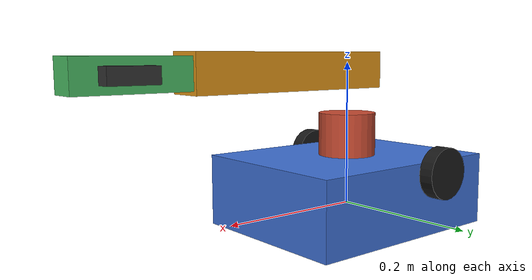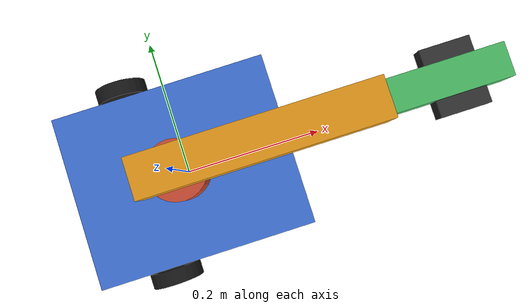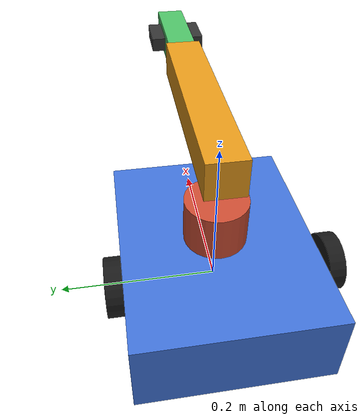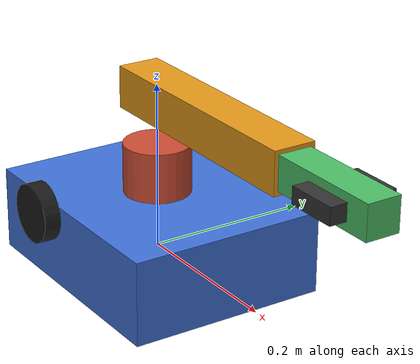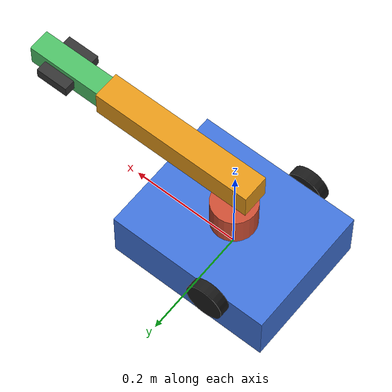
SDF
<?xml version="1.0"?>
<sdf version="1.6">
  <model name="mobile_manipulator">
    <pose>0 0 0.02 0 0 0</pose>

    <!-- ============ 移动底盘 ============ -->
    <link name="base_link">
      <inertial>
        <mass>5.0</mass>
        <inertia><ixx>0.05</ixx><iyy>0.05</iyy><izz>0.08</izz></inertia>
      </inertial>
      <collision name="base_collision">
        <geometry><box><size>0.30 0.24 0.10</size></box></geometry>
      </collision>
      <visual name="base_visual">
        <geometry><box><size>0.30 0.24 0.10</size></box></geometry>
        <material><diffuse>0.25 0.45 0.85 1</diffuse></material>
      </visual>
      <!-- RGB 相机（复用 §4.8 的经验：视觉感知的输入） -->
      <sensor name="rgb_cam" type="camera">
        <always_on>1</always_on>
        <update_rate>10</update_rate>
        <pose>0.16 0 0.10 0 0 0</pose>
        <topic>camera/color/image_raw</topic>
        <gz_frame_id>base_link</gz_frame_id>
        <camera name="rgb_cam">
          <horizontal_fov>1.047</horizontal_fov>
          <image><width>640</width><height>480</height><format>R8G8B8</format></image>
          <clip><near>0.05</near><far>100</far></clip>
        </camera>
      </sensor>
    </link>

    <!-- 车轮（视觉用；物理简单起见只做 visual+collision） -->
    <link name="wheel_left">
      <pose>-0.05 0.13 0.035 -1.5707 0 0</pose>
      <inertial><mass>0.3</mass><inertia><ixx>0.001</ixx><iyy>0.001</iyy><izz>0.001</izz></inertia></inertial>
      <collision name="c"><geometry><cylinder><radius>0.035</radius><length>0.02</length></cylinder></geometry></collision>
      <visual name="v"><geometry><cylinder><radius>0.035</radius><length>0.02</length></cylinder></geometry>
        <material><diffuse>0.1 0.1 0.1 1</diffuse></material></visual>
    </link>
    <link name="wheel_right">
      <pose>-0.05 -0.13 0.035 -1.5707 0 0</pose>
      <inertial><mass>0.3</mass><inertia><ixx>0.001</ixx><iyy>0.001</iyy><izz>0.001</izz></inertia></inertial>
      <collision name="c"><geometry><cylinder><radius>0.035</radius><length>0.02</length></cylinder></geometry></collision>
      <visual name="v"><geometry><cylinder><radius>0.035</radius><length>0.02</length></cylinder></geometry>
        <material><diffuse>0.1 0.1 0.1 1</diffuse></material></visual>
    </link>
    <link name="caster"><pose>-0.14 0 0.02 0 0 0</pose>
      <inertial><mass>0.05</mass><inertia><ixx>1e-5</ixx><iyy>1e-5</iyy><izz>1e-5</izz></inertia></inertial>
      <collision name="c"><geometry><sphere><radius>0.02</radius></sphere></geometry></collision>
    </link>

    <joint name="wheel_left_joint" type="revolute">
      <parent>base_link</parent><child>wheel_left</child>
      <axis><xyz>0 0 1</xyz></axis>
    </joint>
    <joint name="wheel_right_joint" type="revolute">
      <parent>base_link</parent><child>wheel_right</child>
      <axis><xyz>0 0 1</xyz></axis>
    </joint>
    <joint name="caster_joint" type="fixed">
      <parent>base_link</parent><child>caster</child>
    </joint>

    <!-- ============ 机械臂（3 自由度示意）============ -->
    <link name="arm_base">
      <pose>0 0 0.08 0 0 0</pose>
      <inertial><mass>0.5</mass><inertia><ixx>0.001</ixx><iyy>0.001</iyy><izz>0.001</izz></inertia></inertial>
      <visual name="v"><geometry><cylinder><radius>0.04</radius><length>0.06</length></cylinder></geometry>
        <material><diffuse>0.8 0.3 0.2 1</diffuse></material></visual>
    </link>
    <joint name="arm_base_joint" type="fixed">
      <parent>base_link</parent><child>arm_base</child>
      <pose>0 0 0.08 0 0 0</pose>
    </joint>

    <link name="shoulder">
      <pose>0 0 0.17 0 0 0</pose>
      <inertial><mass>0.8</mass><inertia><ixx>0.003</ixx><iyy>0.003</iyy><izz>0.003</izz></inertia></inertial>
      <visual name="v"><geometry><box><size>0.30 0.05 0.05</size></box></geometry>
        <pose>0.11 0 0 0 0 0</pose>
        <material><diffuse>0.9 0.6 0.1 1</diffuse></material></visual>
      <collision name="c"><geometry><box><size>0.30 0.05 0.05</size></box></geometry>
        <pose>0.11 0 0 0 0 0</pose></collision>
    </link>
    <joint name="shoulder_joint" type="revolute">
      <parent>arm_base</parent><child>shoulder</child>
      <pose>0 0 0.03 0 0 0</pose>
      <axis><xyz>0 1 0</xyz></axis>
      <limit><lower>-1.57</lower><upper>1.57</upper><effort>30</effort><velocity>1.0</velocity></limit>
    </joint>

    <link name="elbow">
      <pose>0.22 0 0.17 0 0 0</pose>
      <inertial><mass>0.5</mass><inertia><ixx>0.001</ixx><iyy>0.001</iyy><izz>0.001</izz></inertia></inertial>
      <visual name="v"><geometry><box><size>0.20 0.04 0.04</size></box></geometry>
        <pose>0.08 0 0 0 0 0</pose>
        <material><diffuse>0.3 0.75 0.4 1</diffuse></material></visual>
      <collision name="c"><geometry><box><size>0.20 0.04 0.04</size></box></geometry>
        <pose>0.08 0 0 0 0 0</pose></collision>
    </link>
    <joint name="elbow_joint" type="revolute">
      <parent>shoulder</parent><child>elbow</child>
      <pose>0.22 0 0 0 0 0</pose>
      <axis><xyz>0 1 0</xyz></axis>
      <limit><lower>-1.57</lower><upper>1.57</upper><effort>20</effort><velocity>1.0</velocity></limit>
    </joint>

    <link name="gripper">
      <pose>0.34 0 0.17 0 0 0</pose>
      <inertial><mass>0.2</mass><inertia><ixx>0.0005</ixx><iyy>0.0005</iyy><izz>0.0005</izz></inertia></inertial>
      <visual name="v"><geometry><box><size>0.06 0.08 0.02</size></box></geometry>
        <material><diffuse>0.2 0.2 0.2 1</diffuse></material></visual>
    </link>
    <joint name="gripper_joint" type="fixed">
      <parent>elbow</parent><child>gripper</child>
      <pose>0.18 0 0 0 0 0</pose>
    </joint>

    <!-- 差速驱动插件（= 你问的 DiffDrive） -->
    <plugin filename="gz-sim-diff-drive-system" name="gz::sim::systems::DiffDrive">
      <left_joint>wheel_left_joint</left_joint>
      <right_joint>wheel_right_joint</right_joint>
      <wheel_separation>0.26</wheel_separation>
      <wheel_radius>0.035</wheel_radius>
      <topic>cmd_vel</topic>
      <odom_topic>odom</odom_topic>
      <frame_id>odom</frame_id>
      <child_frame_id>base_link</child_frame_id>
    </plugin>
  </model>
</sdf>
